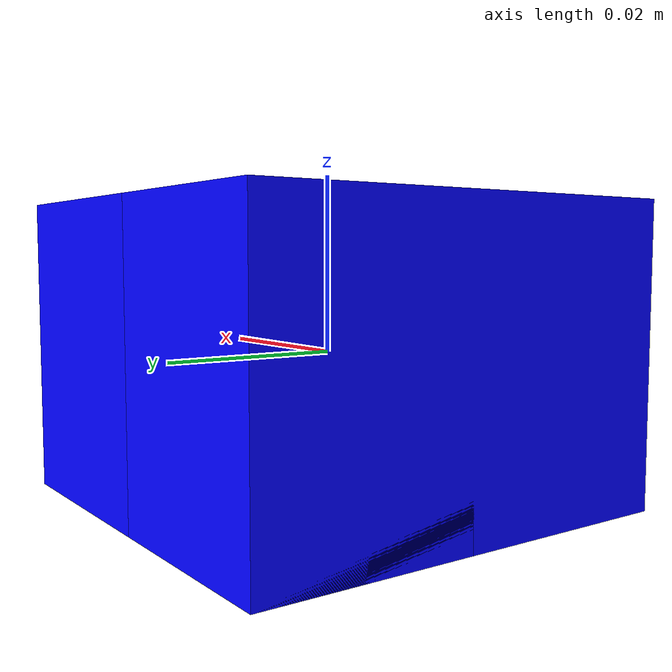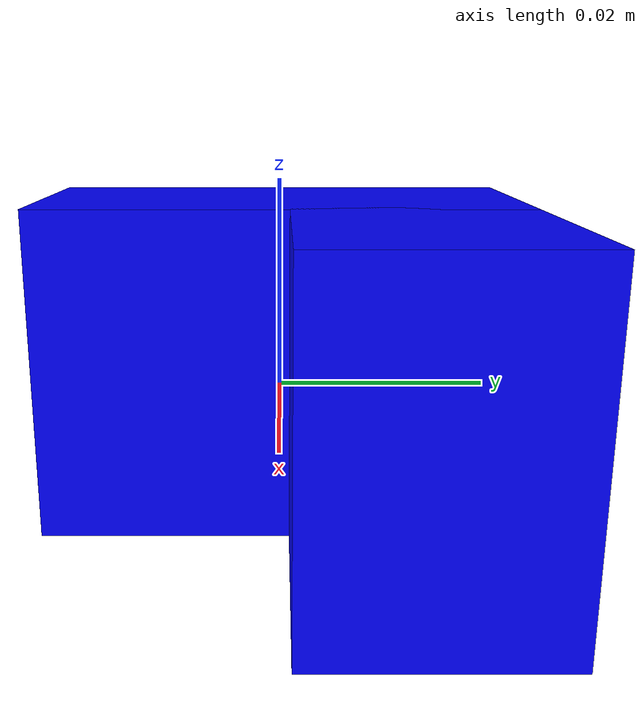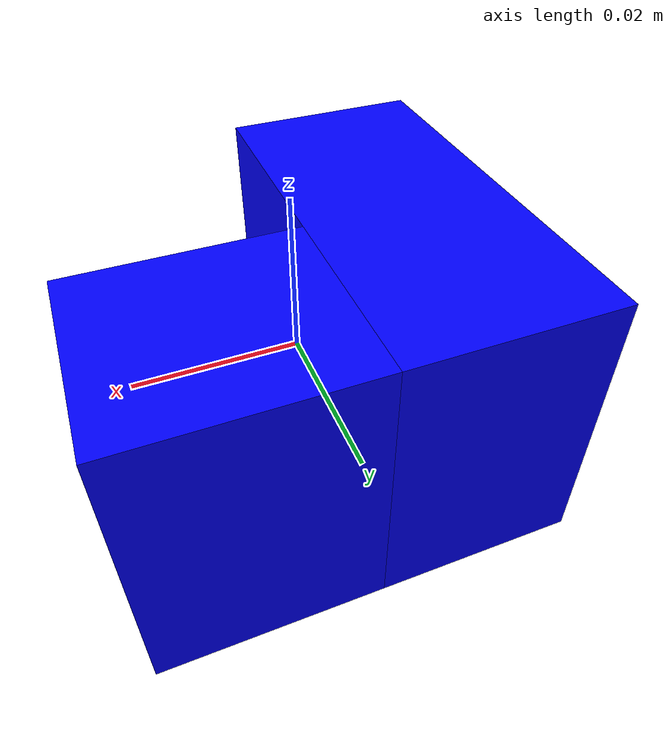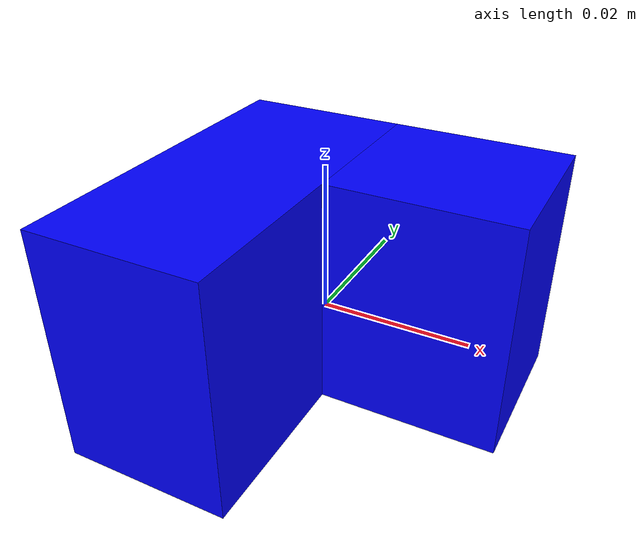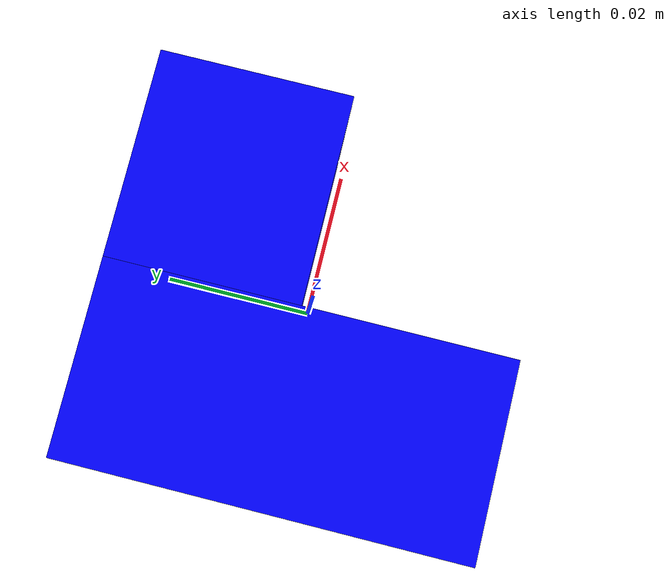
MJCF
<mujoco model="concaveobj">
  <asset>
    <texture file="../textures/metal.png" type="2d" name="tex-metal"/>
    <material name="metal" reflectance="0.7" texrepeat="10 10" texture="tex-metal" texuniform="true"/>
  </asset>
  <worldbody>
    <body>
      <body name="collision">
        <geom pos="-0.013 0 0" size="0.012 0.025 0.017" type="box" solimp="0.998 0.998 0.001" solref="0.02 1" density="100" friction="0.95 0.3 0.2" rgba="0 0 1 1" group="1" condim="4"/>
        <geom pos="0.0 0.013 0" size="0.025 0.012 0.017" type="box" solimp="0.998 0.998 0.001" solref="0.02 1" density="100" friction="0.95 0.3 0.1" rgba="0 0 1 1" group="1" condim="4"/>
        <!--geom pos="0.0 -0.03325 0" size="0.03125 0.0105 0.03" type="box" solimp="0.998 0.998 0.001" solref="0.02 1" density="100" friction="0.95 0.3 0.1" rgba="0 0 1 1" group="1" condim="4"/-->
        <!--geom pos="0.03325 0 0" size="0.0105 0.04375 0.03" type="box" solimp="0.998 0.998 0.001" solref="0.02 1" density="100" friction="0.95 0.3 0.1" rgba="0 0 1 1" group="1" condim="4"/-->
        <!--geom pos="0.054 0 0" size="0.02525 0.015875 0.03" type="box" solimp="0.998 0.998 0.001" solref="0.02 1" density="100" friction="0.95 0.3 0.1" rgba="0 0 1 1" group="1" condim="4"/-->
      </body>
      <site rgba="0 0 0 0" size="0.005" pos="0 0 -0.05" name="bottom_site"/>
      <site rgba="0 0 0 0" size="0.005" pos="0 0 0.03" name="top_site"/>
      <site rgba="0 0 0 0" size="0.005" pos="0.11 0.06 0" name="horizontal_radius_site"/>
    </body>
  </worldbody>
</mujoco>
